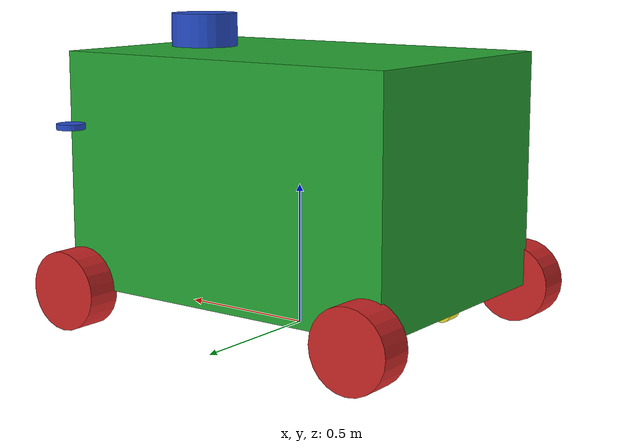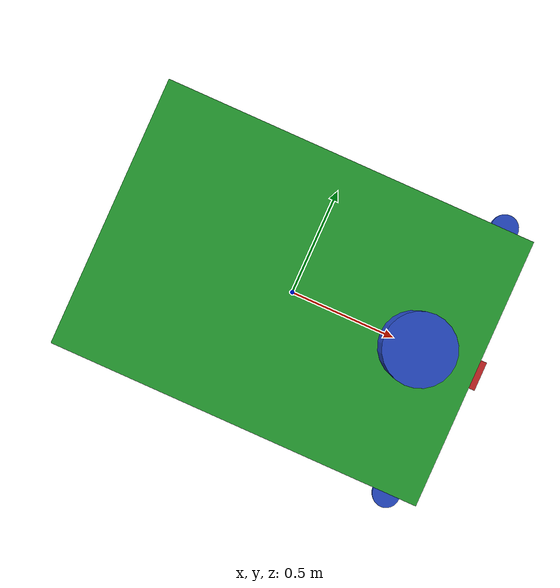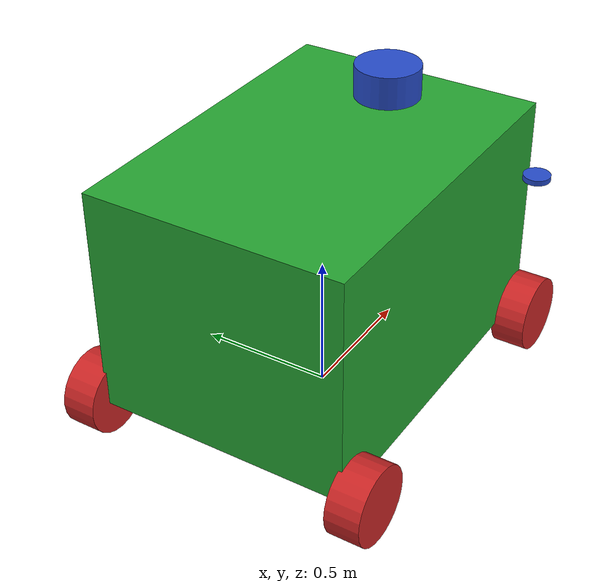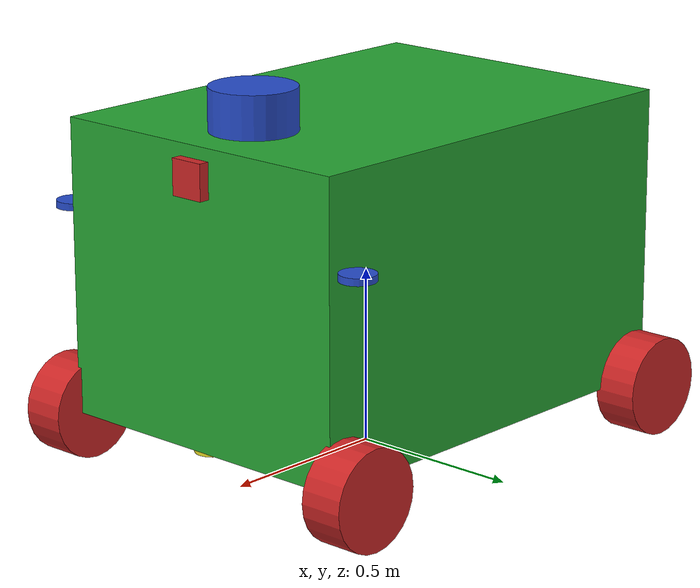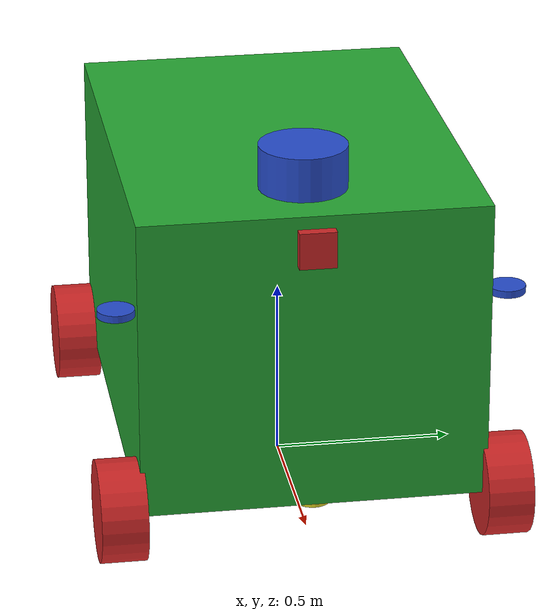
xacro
<?xml version="1.0"?>
<robot xmlns:xacro="http://www.ros.org/wiki/xacro"  name="mrover">

    <xacro:include filename="steer_bot.urdf.xacro" />
    <xacro:include filename="sensors/lidar.xacro" />
    <xacro:include filename="sensors/camera.xacro" />

</robot>

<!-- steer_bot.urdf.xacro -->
<robot name="steer_bot" xmlns:xacro="http://wiki.ros.org/xacro">
  <!-- Include xacro for inertials, materials and wheels -->
  <xacro:include filename="wheel.xacro"/>
  <xacro:include filename="inertial_macros.xacro"/>

  <xacro:property name="robot_namespace" value="/steer_bot"/>

  <!-- Gazebo plugins -->
  <gazebo>
    <!-- Load ros_control plugin using the steer_bot_hardware_gazebo
    implementation of the hardware_interface::RobotHW -->
    <plugin name="gazebo_ros_control" filename="libgazebo_ros_control.so">
      <robotNamespace>${robot_namespace}</robotNamespace>
      <robotSimType>steer_bot_hardware_gazebo/SteerBotHardwareGazebo</robotSimType>
      <legacyModeNS>true</legacyModeNS>
    </plugin>
  </gazebo>

  <!-- Math constants -->
  <xacro:property name="deg_to_rad" value="0.01745329251994329577"/>

  <!-- Robot base dimensions -->
  <xacro:property name="base_length" value="1.3" />
  <xacro:property name="base_width" value="0.94" />
  <xacro:property name="base_height" value="0.83" />
  <xacro:property name="base_mass" value="35" />
  <xacro:property name="PI" value="3.1415926535897931"/>

  <!-- Wheel link dimensions -->
  <xacro:property name="wheel_radius" value="0.1397" />
  <xacro:property name="wheel_thickness" value="0.125" />
  <xacro:property name="wheel_mass" value="1" />

  <!-- Steering link dimensions -->
  <xacro:property name="steer_radius" value="0.05" />
  <xacro:property name="steer_thickness" value="0.02" />
  <xacro:property name="steer_mass" value="1" />

  <!-- Axle positions -->
  <xacro:property name="axle_offset" value="0.05" />
  <xacro:property name="steer_offset" value="0.02" />
  <xacro:property name="wheel_offset_x" value="0.226"/>
  <xacro:property name="wheel_offset_y" value="0.1485"/>
  <xacro:property name="wheel_offset_z" value="0.01"/>

  <!-- BASE LINK -->

  <link name="base_link">
  </link>

  <!-- BASE_FOOTPRINT LINK -->

  <joint name="base_footprint_joint" type="fixed">
      <parent link="base_link"/>
      <child link="base_footprint"/>
      <origin xyz="0 0 0" rpy="0 0 0"/>
  </joint>

  <link name="base_footprint">
  </link>

  <link name="chassis_link">
    <visual>
      <origin xyz="0 0 0" rpy="0 0 0"/>
      <geometry>
        <box size="${base_length} ${base_width} ${base_height}"/>
      </geometry>
      <material name="green" />
    </visual>
    <collision>
      <origin xyz="0 0 0" rpy="0 0 0"/>
      <geometry>
        <box size="${base_length} ${base_width} ${base_height}"/>
      </geometry>
    </collision>
    <xacro:solid_cuboid_inertial
        rpy="0 0 0" xyz="0 0 0"
        mass="${base_mass}"
        x="${base_length}" y="${base_width}" z="${base_height}" />
  </link>
  <joint name="chassis_joint" type="fixed">
    <parent link="base_link"/>
    <child link="chassis_link"/>
     <origin xyz="0 0 ${base_height/2+ wheel_radius}" />
  </joint>

  <!-- Front steer and rear wheel joints required for ackermann_steering_controller -->
  <xacro:front_steer
    name="front"
    parent="chassis"
    steer_radius="${steer_radius}"
    steer_thickness="${steer_thickness}"
    steer_mass="${steer_mass}"
    base_length="${base_length}"
    base_width="${base_width}"
    axle_offset="${axle_offset}"
    steer_height="${wheel_radius+steer_offset}">
  </xacro:front_steer>

  <xacro:rear_wheel
    name="rear"
    parent="chassis"
    wheel_radius="${wheel_radius/4}"
    wheel_thickness="${wheel_thickness/2}"
    wheel_mass="${wheel_mass/32}">
    <origin xyz="${-base_length/2+axle_offset} 0  ${-base_height/2}" rpy="${-90 * deg_to_rad} 0 0"/>
  </xacro:rear_wheel>

  <!-- Steerable front wheels -->
  <xacro:front_wheel_lr
    name="front_right"
    parent="chassis"
    reflect="-1"
    wheel_radius="${wheel_radius}"
    wheel_thickness="${wheel_thickness}"
    wheel_mass="${wheel_mass}"
    steer_radius="${steer_radius}"
    steer_thickness="${steer_thickness}"
    steer_mass="${steer_mass}"
    base_length="${base_length}"
    base_width="${base_width}"
    axle_offset="${axle_offset}"
    steer_height="${wheel_radius+steer_offset}">
  </xacro:front_wheel_lr>
  <xacro:front_wheel_lr
    name="front_left"
    parent="chassis"
    reflect="1"
    wheel_radius="${wheel_radius}"
    wheel_thickness="${wheel_thickness}"
    wheel_mass="${wheel_mass}"
    steer_radius="${steer_radius}"
    steer_thickness="${steer_thickness}"
    steer_mass="${steer_mass}"
    base_length="${base_length}"
    base_width="${base_width}"
    axle_offset="${axle_offset}"
    steer_height="${wheel_radius+steer_offset}">
  </xacro:front_wheel_lr>

  <!-- Rear wheels -->
  <xacro:rear_wheel_lr
    name="rear_right"
    parent="chassis"
    wheel_radius="${wheel_radius}"
    wheel_thickness="${wheel_thickness}"
    wheel_mass="${wheel_mass}">
    <origin xyz="${-base_length/2+axle_offset} ${-base_width/2-axle_offset} ${-base_height/2}" rpy="${-90 * deg_to_rad} 0 0"/>
  </xacro:rear_wheel_lr>
  <xacro:rear_wheel_lr
    name="rear_left"
    parent="chassis"
    wheel_radius="${wheel_radius}"
    wheel_thickness="${wheel_thickness}"
    wheel_mass="${wheel_mass}">
    <origin xyz="${-base_length/2+axle_offset} ${+base_width/2+axle_offset} ${-base_height/2}" rpy="${-90 * deg_to_rad} 0 0"/>
  </xacro:rear_wheel_lr>

  <!-- Colour -->
  <gazebo reference="base_link">
    <material>Gazebo/Green</material>
  </gazebo>

</robot>

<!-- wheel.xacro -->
<robot name="wheel" xmlns:xacro="http://wiki.ros.org/xacro">
  <!-- Include xacro for materials and inertials -->
  <xacro:include filename="materials.xacro"/>
  <xacro:include filename="inertials.xacro"/>

  <!-- Properties -->
  <xacro:property name="steer_effort" value="50000.0"/>
  <xacro:property name="steer_velocity" value="50.0"/>
  <xacro:property name="steer_limit_deg" value="45.0"/>

  <!-- Bicycle model front steering link (required for steer_drive_controller) -->
  <xacro:macro name="front_steer"
    params="
      name
      parent
      steer_radius
      steer_thickness
      steer_mass
      base_length
      base_width
      axle_offset
      steer_height">
    <link name="${name}_steer_link">
      <visual>
        <origin xyz="0 0 0" rpy="0 0 0"/>
        <geometry>
          <cylinder radius="${steer_radius}" length="${steer_thickness}"/>
        </geometry>
        <material name="yellow" />
      </visual>
      <collision>
        <origin xyz="0 0 0" rpy="0 0 0"/>
        <geometry>
          <cylinder radius="${steer_radius}" length="${steer_thickness}"/>
        </geometry>
      </collision>
      <xacro:solid_cylinder_inertial
          rpy="0 0 0" xyz="0 0 0"
          mass="${steer_mass}"
          radius="${steer_radius}" length="${steer_thickness}" />
    </link>

    <joint name="${name}_steer_joint" type="revolute">
      <parent link="${parent}_link"/>
      <child link="${name}_steer_link"/>
      <origin xyz="${base_length/2-axle_offset} 0 ${-base_height/2}" rpy="0 0 0"/>
      <axis xyz="0 0 1"/>
      <limit effort="${steer_effort}"
             lower="${-180.0 * deg_to_rad}" upper="${180.0 * deg_to_rad}"
             velocity="${steer_velocity}"/>
    </joint>

    <transmission name="${name}_steer_joint_trans">
      <type>transmission_interface/SimpleTransmission</type>
      <actuator name="${name}_steer_joint_motor">
        <mechanicalReduction>1</mechanicalReduction>
        <hardwareInterface>hardware_interface/PositionJointInterface</hardwareInterface>
      </actuator>
      <joint name="${name}_steer_joint">
        <hardwareInterface>hardware_interface/PositionJointInterface</hardwareInterface>
      </joint>
    </transmission>

    <gazebo reference="${name}_steer_link">
      <material>Gazebo/Yellow</material>
    </gazebo>
  </xacro:macro>

  <!-- Car steering model front (steerable) wheel links (left/right) -->
  <xacro:macro name="front_wheel_lr"
    params="
      name
      parent
      reflect
      wheel_radius
      wheel_thickness
      wheel_mass
      steer_radius
      steer_thickness
      steer_mass
      base_length
      base_width
      axle_offset
      steer_height">
    <link name="${name}_steer_link">
      <visual>
        <origin xyz="0 0 0" rpy="0 0 0"/>
        <geometry>
          <cylinder radius="${steer_radius}" length="${steer_thickness}"/>
        </geometry>
        <material name="blue" />
      </visual>
      <collision>
        <origin xyz="0 0 0" rpy="0 0 0"/>
        <geometry>
          <cylinder radius="${steer_radius}" length="${steer_thickness}"/>
        </geometry>
      </collision>
      <xacro:solid_cylinder_inertial
          rpy="0 0 0" xyz="0 0 0"
          mass="${steer_mass}"
          radius="${steer_radius}" length="${steer_thickness}" />
    </link>

    <joint name="${name}_steer_joint" type="revolute">
      <parent link="${parent}_link"/>
      <child link="${name}_steer_link"/>
      <origin xyz="${base_length/2-axle_offset} ${reflect*(base_width/2+axle_offset)} ${steer_height}" rpy="0 0 0"/>
      <axis xyz="0 0 1"/>
      <limit effort="${steer_effort}"
             lower="${steer_limit_deg * deg_to_rad * -1.0}" upper="${steer_limit_deg * deg_to_rad}"
             velocity="${steer_velocity}"/>
    </joint>

    <link name="${name}_wheel_link">
      <visual>
        <origin xyz="0 0 0" rpy="0 0 0"/>
        <geometry>
          <cylinder radius="${wheel_radius}" length="${wheel_thickness}"/>
        </geometry>
        <material name="red" />
      </visual>
      <collision>
        <origin xyz="0 0 0" rpy="0 0 0"/>
        <geometry>
          <cylinder radius="${wheel_radius}" length="${wheel_thickness}"/>
        </geometry>
      </collision>
      <xacro:solid_cylinder_inertial
          rpy="0 0 0" xyz="0 0 0"
          mass="${wheel_mass}"
          radius="${wheel_radius}" length="${wheel_thickness}" />
    </link>

    <joint name="${name}_wheel_joint" type="continuous">
      <parent link="${name}_steer_link"/>
      <child link="${name}_wheel_link"/>
      <origin xyz="0 0 ${-steer_height-base_height/2}" rpy="${-90 * deg_to_rad} 0 0"/>
      <axis xyz="0 0 1"/>
    </joint>

    <transmission name="${name}_steer_joint_trans">
      <type>transmission_interface/SimpleTransmission</type>
      <actuator name="${name}_steer_joint_motor">
        <mechanicalReduction>1</mechanicalReduction>
        <hardwareInterface>hardware_interface/PositionJointInterface</hardwareInterface>
      </actuator>
      <joint name="${name}_steer_joint">
        <hardwareInterface>hardware_interface/PositionJointInterface</hardwareInterface>
      </joint>
    </transmission>

    <transmission name="${name}_wheel_joint_trans">
      <type>transmission_interface/SimpleTransmission</type>
      <actuator name="${name}_wheel_joint_motor">
        <mechanicalReduction>1</mechanicalReduction>
        <hardwareInterface>hardware_interface/VelocityJointInterface</hardwareInterface>
      </actuator>
      <joint name="${name}_wheel_joint">
        <hardwareInterface>hardware_interface/VelocityJointInterface</hardwareInterface>
      </joint>
    </transmission>

    <gazebo reference="${name}_steer_link">
      <material>Gazebo/Blue</material>
    </gazebo>

    <gazebo reference="${name}_wheel_link">
      <material>Gazebo/Red</material>
    </gazebo>
  </xacro:macro>

  <!-- Bicycle model rear wheel link (required for steer_drive_controller) -->
  <xacro:macro name="rear_wheel"
    params="
      name
      parent
      wheel_radius
      wheel_thickness
      wheel_mass
      *origin">
    <link name="${name}_wheel_link">
      <visual>
        <origin xyz="0 0 0" rpy="0 0 0"/>
        <geometry>
          <cylinder radius="${wheel_radius}" length="${wheel_thickness}"/>
        </geometry>
        <material name="yellow" />
      </visual>
      <collision>
        <origin xyz="0 0 0" rpy="0 0 0"/>
        <geometry>
          <cylinder radius="${wheel_radius}" length="${wheel_thickness}"/>
        </geometry>
      </collision>
      <xacro:solid_cylinder_inertial
          rpy="0 0 0" xyz="0 0 0"
          mass="${wheel_mass}"
          radius="${wheel_radius}" length="${wheel_thickness}" />
    </link>

    <joint name="${name}_wheel_joint" type="continuous">
      <parent link="${parent}_link"/>
      <child link="${name}_wheel_link"/>
      <xacro:insert_block name="origin"/>
      <axis xyz="0 0 1"/>
    </joint>

    <transmission name="${name}_wheel_joint_trans">
      <type>transmission_interface/SimpleTransmission</type>
      <actuator name="${name}_wheel_joint_motor">
        <mechanicalReduction>1</mechanicalReduction>
        <hardwareInterface>hardware_interface/VelocityJointInterface</hardwareInterface>
      </actuator>
      <joint name="${name}_wheel_joint">
        <hardwareInterface>hardware_interface/VelocityJointInterface</hardwareInterface>
      </joint>
    </transmission>

    <gazebo reference="${name}_wheel_link">
      <material>Gazebo/Yellow</material>
    </gazebo>
  </xacro:macro>

  <!-- Bicycle model front wheel link (passive - no transmission) -->
  <xacro:macro name="front_wheel"
    params="
      name
      parent
      wheel_radius
      wheel_thickness
      wheel_mass
      *origin">
    <link name="${name}_wheel_link">
      <visual>
        <origin xyz="0 0 0" rpy="0 0 0"/>
        <geometry>
          <cylinder radius="${wheel_radius}" length="${wheel_thickness}"/>
        </geometry>
        <material name="yellow" />
      </visual>
      <collision>
        <origin xyz="0 0 0" rpy="0 0 0"/>
        <geometry>
          <cylinder radius="${wheel_radius}" length="${wheel_thickness}"/>
        </geometry>
      </collision>
      <xacro:solid_cylinder_inertial
          rpy="0 0 0" xyz="0 0 0"
          mass="${wheel_mass}"
          radius="${wheel_radius}" length="${wheel_thickness}" />
    </link>

    <joint name="${name}_wheel_joint" type="continuous">
      <parent link="${parent}_link"/>
      <child link="${name}_wheel_link"/>
      <xacro:insert_block name="origin"/>
      <axis xyz="0 0 1"/>
    </joint>

    <gazebo reference="${name}_wheel_link">
      <material>Gazebo/Yellow</material>
    </gazebo>

    <gazebo reference="${name}_wheel_joint">
      <provideFeedback>true</provideFeedback>
    </gazebo>
  </xacro:macro>

  <!-- Car steering model rear wheel links (left/right) -->
  <xacro:macro name="rear_wheel_lr"
    params="
      name
      parent
      wheel_radius
      wheel_thickness
      wheel_mass
      *origin">
    <link name="${name}_wheel_link">
      <visual>
        <origin xyz="0 0 0" rpy="0 0 0"/>
        <geometry>
          <cylinder radius="${wheel_radius}" length="${wheel_thickness}"/>
        </geometry>
        <material name="red" />
      </visual>
      <collision>
        <origin xyz="0 0 0" rpy="0 0 0"/>
        <geometry>
          <cylinder radius="${wheel_radius}" length="${wheel_thickness}"/>
        </geometry>
      </collision>
      <xacro:solid_cylinder_inertial
          rpy="0 0 0" xyz="0 0 0"
          mass="${wheel_mass}"
          radius="${wheel_radius}" length="${wheel_thickness}" />
    </link>

    <joint name="${name}_wheel_joint" type="continuous">
      <parent link="${parent}_link"/>
      <child link="${name}_wheel_link"/>
      <xacro:insert_block name="origin"/>
      <axis xyz="0 0 1"/>
    </joint>

    <transmission name="${name}_wheel_joint_trans">
      <type>transmission_interface/SimpleTransmission</type>
      <actuator name="${name}_wheel_joint_motor">
        <mechanicalReduction>1</mechanicalReduction>
        <hardwareInterface>hardware_interface/VelocityJointInterface</hardwareInterface>
      </actuator>
      <joint name="${name}_wheel_joint">
        <hardwareInterface>hardware_interface/VelocityJointInterface</hardwareInterface>
      </joint>
    </transmission>

    <gazebo reference="${name}_wheel_link">
      <material>Gazebo/Red</material>
    </gazebo>
  </xacro:macro>
</robot>

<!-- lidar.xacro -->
<robot xmlns:xacro="http://www.ros.org/wiki/xacro" >
<!-- Constants for robot dimensions -->

    <xacro:property name="lidar_mass" value="0.2" /> <!-- arbitrary value for base mass -->
    <xacro:property name="lidar_radius" value="0.12" />
    <xacro:property name="lidar_length" value="0.12" />

    <joint name="laser_joint" type="fixed">
        <parent link="chassis_link"/>
        <child link="laser_frame"/>
        <origin xyz="${base_length/3}  0 ${base_height/2 + lidar_length/2 }" rpy="0 0 0"/>
    </joint>

    <link name="laser_frame">
        <visual>
            <geometry>
                <cylinder radius="${lidar_radius}" length="${lidar_length}"/>
            </geometry>
            <material name="blue"/>
        </visual>
        <collision>
            <geometry>
                <cylinder radius="${lidar_radius}" length="${lidar_length}"/>
            </geometry>
        </collision>
        <xacro:inertial_cylinder mass="${lidar_mass}" length="${lidar_length}" radius="${lidar_radius}">
            <origin xyz="0 0 0" rpy="0 0 0"/>
        </xacro:inertial_cylinder>
    </link>
    <gazebo reference="laser_frame">
        <material>Gazebo/Black</material>
           <sensor name="laser" type="ray">
            <pose> 0 0 0 0 0 0 </pose>
            <visualize>false</visualize>
            <update_rate>20</update_rate>
            <ray>
                <scan>
                    <horizontal>
                        <samples>359</samples>
                        <resolution>1</resolution>
                        <min_angle>-3.14</min_angle>
                        <max_angle>3.14</max_angle>
                    </horizontal>
                </scan>
                <range>
                    <min>0.3</min>
                    <max>20.0</max>
                    <resolution>0.01</resolution>
                </range>
                <noise>
                    <type>gaussian</type>
                    <mean>0.0</mean>
                    <stddev>0.01</stddev>
                </noise>
            </ray>
            <plugin name="gazebo_ros_laser_controller" filename="libgazebo_ros_laser.so">
                <robotNamespace>/</robotNamespace>
                <topicName>/scan</topicName>
                <frameName>laser_frame</frameName>
            </plugin>
        </sensor>
    </gazebo>

</robot>

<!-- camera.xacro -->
<robot xmlns:xacro="http://www.ros.org/wiki/xacro" >

    <!-- Camera properties -->
    <xacro:property name="hfov" value="1.089" />
    <xacro:property name="cam_width" value="640" />
    <xacro:property name="cam_height" value="480" />
    <xacro:property name="near" value="0.05" />
    <xacro:property name="far" value="8.0" />
    <xacro:property name="camera_height_dif" value="0.5" />
    <xacro:property name="camera_size_x" value="0.03" />
    <xacro:property name="camera_size_y" value="0.1" />
    <xacro:property name="camera_size_z" value="0.1" />

    <joint name="camera_joint" type="fixed">
        <parent link="chassis_link"/>
        <child link="camera_link"/>
        <origin xyz="${base_length/2 + camera_size_x/2 } 0 ${base_height - camera_height_dif}" rpy="0 0 0"/>
    </joint>

    <link name="camera_link">
        <visual>
            <geometry>
                <box size="${camera_size_x} ${camera_size_y} ${camera_size_z}"/>
            </geometry>
            <material name="red"/>
        </visual>
    </link>

    <joint name="camera_optical_joint" type="fixed">
        <parent link="camera_link"/>
        <child link="camera_link_optical"/>
        <origin xyz="0 0 0" rpy="${-PI/2} 0 ${-PI/2}"/>
    </joint>

    <link name="camera_link_optical"></link>
    <gazebo reference="camera_link">
        <material>Gazebo/Red</material>
        <sensor name="camera" type="camera">
            <pose> 0 0 0 0 0 0 </pose>
            <visualize>true</visualize>
            <update_rate>10</update_rate>
            <camera>
                <horizontal_fov>${hfov}</horizontal_fov>
                <image>
                    <format>R8G8B8</format>
                    <width>${cam_width}</width>
                    <height>${cam_height}</height>
                </image>
                <clip>
                    <near>${near}</near>
                    <far>${far}</far>
                </clip>
            </camera>
            <plugin name="gazebo_ros_camera" filename="libgazebo_ros_camera.so">
                <robotNamespace>/</robotNamespace>
                <cameraName>camera</cameraName>
                <imageTopicName>image_raw</imageTopicName>
                <cameraInfoTopicName>camera_info</cameraInfoTopicName>
                <frameName>camera_link_optical</frameName>
            </plugin>
        </sensor>
    </gazebo>

</robot>
